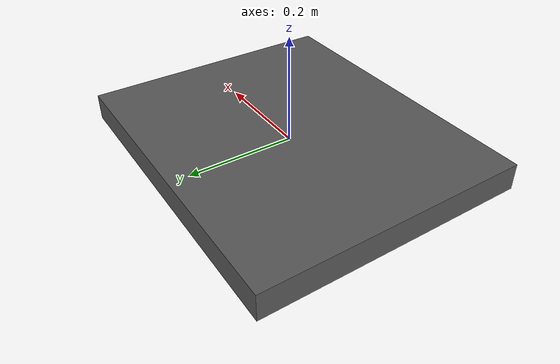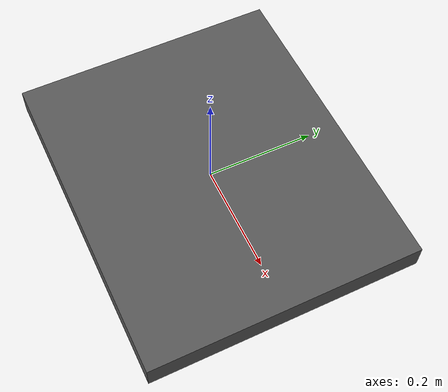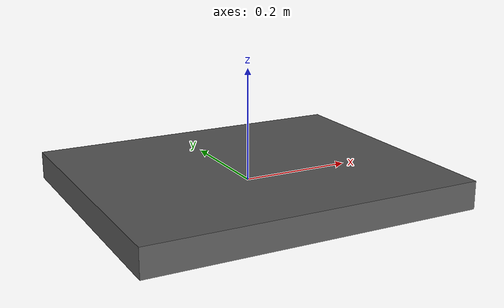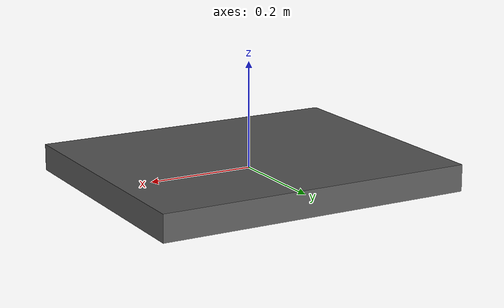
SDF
<?xml version="1.0"?>

<sdf version="1.7">

  <model name="work_platform">

    <static>true</static>

    <link name="platform_link">

      <collision name="collision">
        <geometry>
          <box>
            <size>0.60 0.50 0.05</size>
          </box>
        </geometry>
      </collision>

      <visual name="visual">
        <geometry>
          <box>
            <size>0.60 0.50 0.05</size>
          </box>
        </geometry>

        <material>
          <ambient>0.35 0.35 0.35 1</ambient>
          <diffuse>0.35 0.35 0.35 1</diffuse>
        </material>
      </visual>

    </link>

  </model>

</sdf>
